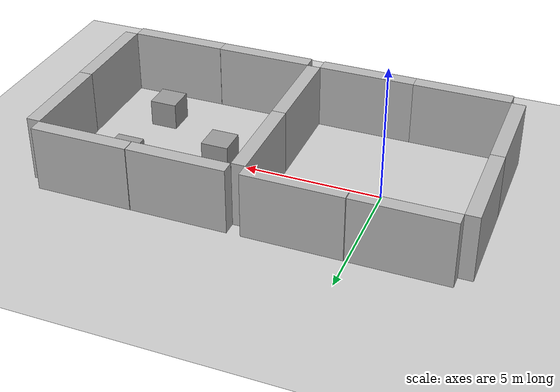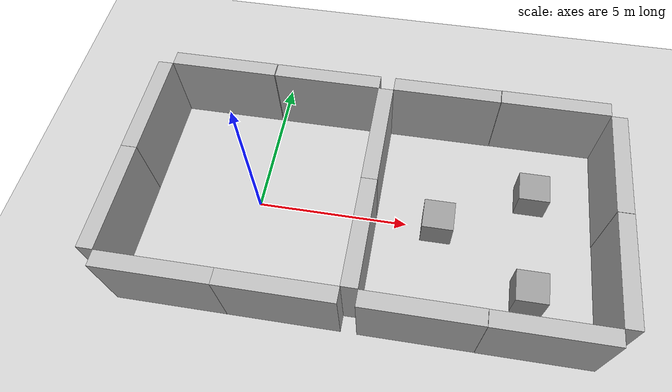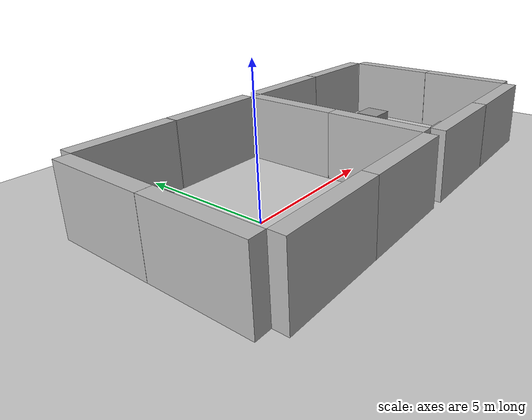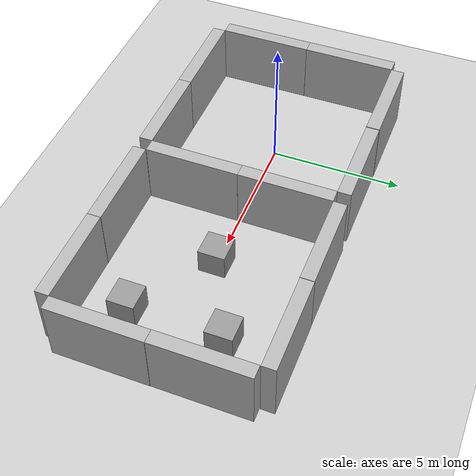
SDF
<sdf version="1.6">
 <world name="default">
  <light name="sun" type="directional">
   <pose>0 0 10 0 -0 0</pose>
   <diffuse>0.8 0.8 0.8 1</diffuse>
   <specular>0.1 0.1 0.1 1</specular>
   <attenuation>
    <range>1000</range>
    <constant>0.9</constant>
    <linear>0.01</linear>
    <quadratic>0.001</quadratic>
   </attenuation>
   <direction>-0.5 0.5 -1</direction>
  </light>
  <model name="ground_plane">
   <static>1</static>
   <link name="link">
    <collision name="collision">
     <geometry><plane><normal>0 0 1</normal><size>100 100</size></plane></geometry>
     <surface><friction><ode><mu>100</mu><mu2>50</mu2></ode></friction></surface>
    </collision>
    <visual name="visual">
     <cast_shadows>0</cast_shadows>
     <geometry><plane><normal>0 0 1</normal><size>100 100</size></plane></geometry>
     <material>
      <script><uri>file://media/materials/scripts/gazebo.material</uri><name>Gazebo/Grey</name></script>
     </material>
    </visual>
   </link>
  </model>
  <gravity>0 0 -9.8</gravity>
  <magnetic_field>6e-06 2.3e-05 -4.2e-05</magnetic_field>
  <atmosphere type="adiabatic"/>
  <physics name="default_physics" default="0" type="ode">
   <max_step_size>0.001</max_step_size>
   <real_time_factor>1</real_time_factor>
   <real_time_update_rate>1000</real_time_update_rate>
  </physics>
  <scene><ambient>0.4 0.4 0.4 1</ambient><background>0.7 0.7 0.7 1</background><shadows>1</shadows></scene>
  <spherical_coordinates>
   <surface_model>EARTH_WGS84</surface_model>
   <latitude_deg>0</latitude_deg>
   <longitude_deg>0</longitude_deg>
   <elevation>0</elevation>
   <heading_deg>0</heading_deg>
  </spherical_coordinates>
  <model name="mywall0_0">
   <static>1</static>
   <link name="link">
    <pose>0 0 1.4 0 -0 0</pose>
    <collision name="collision"><geometry><box><size>3.5 0.5 2.4</size></box></geometry></collision>
    <visual name="visual">
     <cast_shadows>0</cast_shadows>
     <geometry><box><size>3.5 0.5 2.4</size></box></geometry>
     <material>
      <script>
       <uri>model://mywall0/materials/scripts</uri>
       <uri>model://mywall0/materials/textures</uri>
       <name>vrc/mywall0</name>
      </script>
     </material>
    </visual>
   </link>
   <pose>1.77534 3.75 0 0 -0 0</pose>
  </model>
  <model name="mywall0_1">
   <static>1</static>
   <link name="link">
    <pose>0 0 1.4 0 -0 0</pose>
    <collision name="collision"><geometry><box><size>3.5 0.5 2.4</size></box></geometry></collision>
    <visual name="visual">
     <cast_shadows>0</cast_shadows>
     <geometry><box><size>3.5 0.5 2.4</size></box></geometry>
     <material>
      <script>
       <uri>model://mywall0/materials/scripts</uri>
       <uri>model://mywall0/materials/textures</uri>
       <name>vrc/mywall0</name>
      </script>
     </material>
    </visual>
   </link>
   <pose>-1.74865 3.75 0 0 -0 0</pose>
  </model>
  <model name="mywall0_2">
   <static>1</static>
   <link name="link">
    <pose>0 0 1.4 0 -0 0</pose>
    <collision name="collision"><geometry><box><size>3.5 0.5 2.4</size></box></geometry></collision>
    <visual name="visual">
     <cast_shadows>0</cast_shadows>
     <geometry><box><size>3.5 0.5 2.4</size></box></geometry>
     <material>
      <script>
       <uri>model://mywall0/materials/scripts</uri>
       <uri>model://mywall0/materials/textures</uri>
       <name>vrc/mywall0</name>
      </script>
     </material>
    </visual>
   </link>
   <pose>-1.73951 -3.75 0 0 -0 0</pose>
  </model>
  <model name="mywall0_3">
   <static>1</static>
   <link name="link">
    <pose>0 0 1.4 0 -0 0</pose>
    <collision name="collision"><geometry><box><size>3.5 0.5 2.4</size></box></geometry></collision>
    <visual name="visual">
     <cast_shadows>0</cast_shadows>
     <geometry><box><size>3.5 0.5 2.4</size></box></geometry>
     <material>
      <script>
       <uri>model://mywall0/materials/scripts</uri>
       <uri>model://mywall0/materials/textures</uri>
       <name>vrc/mywall0</name>
      </script>
     </material>
    </visual>
   </link>
   <pose>1.75778 -3.75 0 0 -0 0</pose>
  </model>
  <model name="mywall0_4">
   <static>1</static>
   <link name="link">
    <pose>0 0 1.4 0 -0 0</pose>
    <collision name="collision"><geometry><box><size>3.5 0.5 2.4</size></box></geometry></collision>
    <visual name="visual">
     <cast_shadows>0</cast_shadows>
     <geometry><box><size>3.5 0.5 2.4</size></box></geometry>
     <material>
      <script>
       <uri>model://mywall0/materials/scripts</uri>
       <uri>model://mywall0/materials/textures</uri>
       <name>vrc/mywall0</name>
      </script>
     </material>
    </visual>
   </link>
   <pose>-3.75 1.75 0 0 -0 1.57</pose>
  </model>
  <model name="mywall0_4_clone">
   <static>1</static>
   <link name="link">
    <pose>0 0 1.4 0 -0 0</pose>
    <collision name="collision"><geometry><box><size>3.5 0.5 2.4</size></box></geometry></collision>
    <visual name="visual">
     <cast_shadows>0</cast_shadows>
     <geometry><box><size>3.5 0.5 2.4</size></box></geometry>
     <material>
      <script>
       <uri>model://mywall0/materials/scripts</uri>
       <uri>model://mywall0/materials/textures</uri>
       <name>vrc/mywall0</name>
      </script>
     </material>
    </visual>
   </link>
   <pose>-3.7504 -1.75075 0 0 -0 1.57</pose>
  </model>
  <model name="mywall0_4_clone_0">
   <static>1</static>
   <link name="link">
    <pose>0 0 1.4 0 -0 0</pose>
    <collision name="collision"><geometry><box><size>3.5 0.5 2.4</size></box></geometry></collision>
    <visual name="visual">
     <cast_shadows>0</cast_shadows>
     <geometry><box><size>3.5 0.5 2.4</size></box></geometry>
     <material>
      <script>
       <uri>model://mywall0/materials/scripts</uri>
       <uri>model://mywall0/materials/textures</uri>
       <name>vrc/mywall0</name>
      </script>
     </material>
    </visual>
   </link>
   <pose>3.75 1.75 0 0 -0 1.57</pose>
  </model>
  <model name="mywall0_4_clone_1">
   <static>1</static>
   <link name="link">
    <pose>0 0 1.4 0 -0 0</pose>
    <collision name="collision"><geometry><box><size>3.5 0.5 2.4</size></box></geometry></collision>
    <visual name="visual">
     <cast_shadows>0</cast_shadows>
     <geometry><box><size>3.5 0.5 2.4</size></box></geometry>
     <material>
      <script>
       <uri>model://mywall0/materials/scripts</uri>
       <uri>model://mywall0/materials/textures</uri>
       <name>vrc/mywall0</name>
      </script>
     </material>
    </visual>
   </link>
   <pose>3.75 -1.75 0 0 -0 1.57</pose>
  </model>
  <model name="mywall0_4_clone_0_clone">
   <static>1</static>
   <link name="link">
    <pose>0 0 1.4 0 -0 0</pose>
    <collision name="collision"><geometry><box><size>3.5 0.5 2.4</size></box></geometry></collision>
    <visual name="visual">
     <cast_shadows>0</cast_shadows>
     <geometry><box><size>3.5 0.5 2.4</size></box></geometry>
     <material>
      <script>
       <uri>model://mywall0/materials/scripts</uri>
       <uri>model://mywall0/materials/textures</uri>
       <name>vrc/mywall0</name>
      </script>
     </material>
    </visual>
   </link>
   <pose>11.25 1.75 0 0 -0 1.57</pose>
  </model>
  <model name="mywall0_1_clone">
   <static>1</static>
   <link name="link">
    <pose>0 0 1.4 0 -0 0</pose>
    <collision name="collision"><geometry><box><size>3.5 0.5 2.4</size></box></geometry></collision>
    <visual name="visual">
     <cast_shadows>0</cast_shadows>
     <geometry><box><size>3.5 0.5 2.4</size></box></geometry>
     <material>
      <script>
       <uri>model://mywall0/materials/scripts</uri>
       <uri>model://mywall0/materials/textures</uri>
       <name>vrc/mywall0</name>
      </script>
     </material>
    </visual>
   </link>
   <pose>5.7511 3.75831 0 0 -0 0</pose>
  </model>
  <model name="mywall0_1_clone_0">
   <static>1</static>
   <link name="link">
    <pose>0 0 1.4 0 -0 0</pose>
    <collision name="collision"><geometry><box><size>3.5 0.5 2.4</size></box></geometry></collision>
    <visual name="visual">
     <cast_shadows>0</cast_shadows>
     <geometry><box><size>3.5 0.5 2.4</size></box></geometry>
     <material>
      <script>
       <uri>model://mywall0/materials/scripts</uri>
       <uri>model://mywall0/materials/textures</uri>
       <name>vrc/mywall0</name>
      </script>
     </material>
    </visual>
   </link>
   <pose>9.26518 3.76712 0 0 -0 0</pose>
  </model>
  <model name="mywall0_4_clone_0_clone_clone">
   <static>1</static>
   <link name="link">
    <pose>0 0 1.4 0 -0 0</pose>
    <collision name="collision"><geometry><box><size>3.5 0.5 2.4</size></box></geometry></collision>
    <visual name="visual">
     <cast_shadows>0</cast_shadows>
     <geometry><box><size>3.5 0.5 2.4</size></box></geometry>
     <material>
      <script>
       <uri>model://mywall0/materials/scripts</uri>
       <uri>model://mywall0/materials/textures</uri>
       <name>vrc/mywall0</name>
      </script>
     </material>
    </visual>
   </link>
   <pose>11.2541 -1.75467 0 0 -0 1.57</pose>
  </model>
  <model name="mywall0_3_clone">
   <static>1</static>
   <link name="link">
    <pose>0 0 1.4 0 -0 0</pose>
    <collision name="collision"><geometry><box><size>3.5 0.5 2.4</size></box></geometry></collision>
    <visual name="visual">
     <cast_shadows>0</cast_shadows>
     <geometry><box><size>3.5 0.5 2.4</size></box></geometry>
     <material>
      <script>
       <uri>model://mywall0/materials/scripts</uri>
       <uri>model://mywall0/materials/textures</uri>
       <name>vrc/mywall0</name>
      </script>
     </material>
    </visual>
   </link>
   <pose>5.75 -3.75829 0 0 -0 0</pose>
  </model>
  <model name="mywall0_3_clone_0">
   <static>1</static>
   <link name="link">
    <pose>0 0 1.4 0 -0 0</pose>
    <collision name="collision"><geometry><box><size>3.5 0.5 2.4</size></box></geometry></collision>
    <visual name="visual">
     <cast_shadows>0</cast_shadows>
     <geometry><box><size>3.5 0.5 2.4</size></box></geometry>
     <material>
      <script>
       <uri>model://mywall0/materials/scripts</uri>
       <uri>model://mywall0/materials/textures</uri>
       <name>vrc/mywall0</name>
      </script>
     </material>
    </visual>
   </link>
   <pose>9.25625 -3.76281 0 0 -0 0</pose>
  </model>
  <model name="unit_box_0">
   <pose>9 1.49999 0.499995 0 -1e-05 0</pose>
   <link name="link">
    <inertial>
     <mass>1</mass>
     <inertia>
      <ixx>0.166667</ixx>
      <ixy>0</ixy>
      <ixz>0</ixz>
      <iyy>0.166667</iyy>
      <iyz>0</iyz>
      <izz>0.166667</izz>
     </inertia>
    </inertial>
    <collision name="collision"><geometry><box><size>1 1 1</size></box></geometry></collision>
    <visual name="visual">
     <geometry><box><size>1 1 1</size></box></geometry>
     <material>
      <script><name>Gazebo/Grey</name><uri>file://media/materials/scripts/gazebo.material</uri></script>
     </material>
    </visual>
   </link>
  </model>
  <model name="unit_box_1">
   <pose>6 5e-06 0.499995 0 -1e-05 0</pose>
   <link name="link">
    <inertial>
     <mass>1</mass>
     <inertia>
      <ixx>0.166667</ixx>
      <ixy>0</ixy>
      <ixz>0</ixz>
      <iyy>0.166667</iyy>
      <iyz>0</iyz>
      <izz>0.166667</izz>
     </inertia>
    </inertial>
    <collision name="collision"><geometry><box><size>1 1 1</size></box></geometry></collision>
    <visual name="visual">
     <geometry><box><size>1 1 1</size></box></geometry>
     <material>
      <script><name>Gazebo/Grey</name><uri>file://media/materials/scripts/gazebo.material</uri></script>
     </material>
    </visual>
   </link>
  </model>
  <model name="unit_box_2">
   <pose>9 -1.99999 0.499995 -1e-05 0 0</pose>
   <link name="link">
    <inertial>
     <mass>1</mass>
     <inertia>
      <ixx>0.166667</ixx>
      <ixy>0</ixy>
      <ixz>0</ixz>
      <iyy>0.166667</iyy>
      <iyz>0</iyz>
      <izz>0.166667</izz>
     </inertia>
    </inertial>
    <collision name="collision"><geometry><box><size>1 1 1</size></box></geometry></collision>
    <visual name="visual">
     <geometry><box><size>1 1 1</size></box></geometry>
     <material>
      <script><name>Gazebo/Grey</name><uri>file://media/materials/scripts/gazebo.material</uri></script>
     </material>
    </visual>
   </link>
  </model>
 </world>
</sdf>
